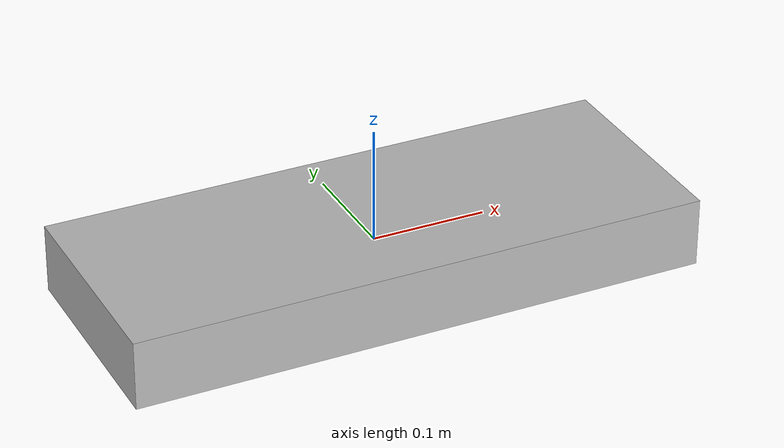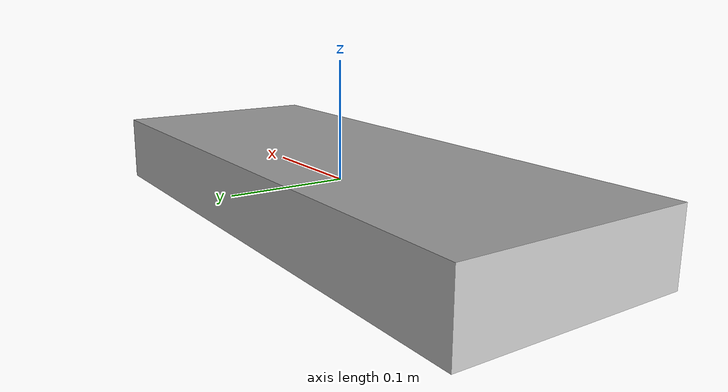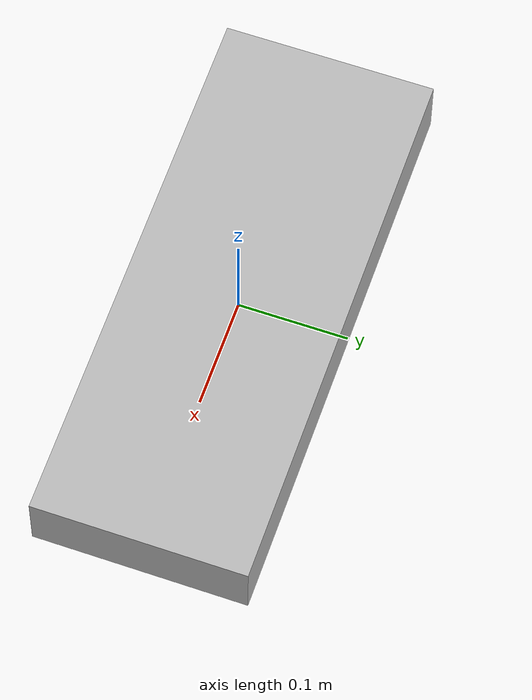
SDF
<?xml version="1.0"?>
<sdf version="1.8">
  <model name="table">
    <link name="table">
      <visual name="table_visual">
        <geometry>
          <mesh>
            <uri>package://finger_description/meshes/table.obj</uri>
          </mesh>
        </geometry>
      </visual>

      <collision name="table_collision">
        <pose>0 0 0 0 0 0</pose>
        <geometry>
          <mesh>
            <uri>package://finger_description/meshes/table.obj</uri>
          </mesh>
        </geometry>
      </collision>
    </link>
  </model>
</sdf>
